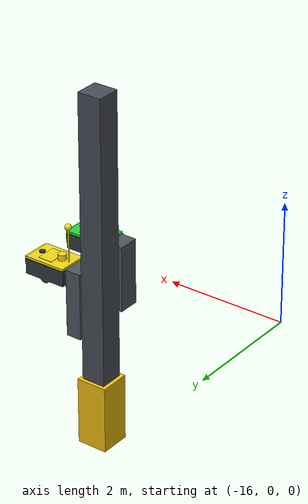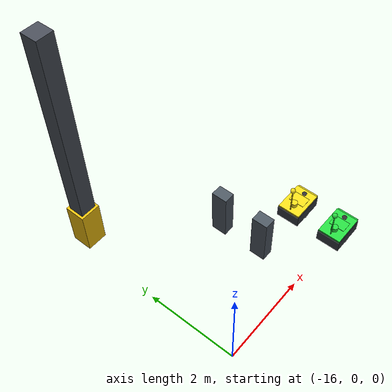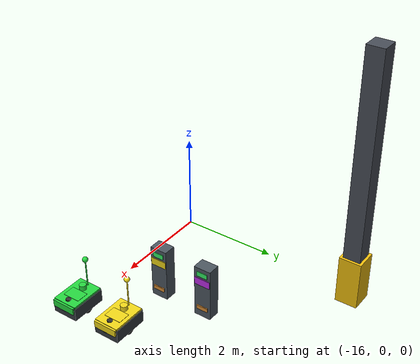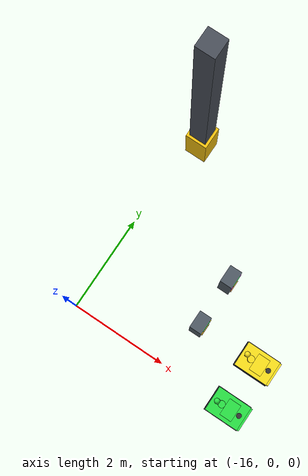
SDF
<sdf version="1.8">
 <world name="warehouse_3d">
  <model name="warehouse_architecture">
   <static>true</static>
   <link name="col_2_base">
    <pose>-15.7500 4.0000 0.5000 0.0000 0.0000 0.0000</pose>
    <collision name="col_2_base_col"><geometry><box><size>0.4500 0.4500 1.0000</size></box></geometry></collision>
    <visual name="col_2_base_vis">
     <geometry><box><size>0.4500 0.4500 1.0000</size></box></geometry>
     <material>
      <ambient>0.617 0.488 0.033 1.00</ambient>
      <diffuse>0.950 0.750 0.050 1.00</diffuse>
      <specular>0.15 0.15 0.15 1.0</specular>
     </material>
    </visual>
   </link>
   <link name="col_2_stem">
    <pose>-15.7500 4.0000 3.1000 0.0000 0.0000 0.0000</pose>
    <collision name="col_2_stem_col"><geometry><box><size>0.3500 0.3500 4.2000</size></box></geometry></collision>
    <visual name="col_2_stem_vis">
     <geometry><box><size>0.3500 0.3500 4.2000</size></box></geometry>
     <material>
      <ambient>0.182 0.195 0.221 1.00</ambient>
      <diffuse>0.280 0.300 0.340 1.00</diffuse>
      <specular>0.15 0.15 0.15 1.0</specular>
     </material>
    </visual>
   </link>
  </model>
  <model name="charging_bay_delta">
   <static>true</static>
   <pose>-13.80 1.00 0.0 0 0 0</pose>
   <link name="terminal_housing">
    <pose>0 0 0.55 0 0 0</pose>
    <collision name="pylon_col"><geometry><box><size>0.25 0.35 1.1</size></box></geometry></collision>
    <visual name="pylon_vis">
     <geometry><box><size>0.25 0.35 1.1</size></box></geometry>
     <material><ambient>0.22 0.25 0.28 1.0</ambient><diffuse>0.30 0.34 0.38 1.0</diffuse></material>
    </visual>
    <visual name="color_accent">
     <pose>0.13 0 0.25 0 0 0</pose>
     <geometry><box><size>0.01 0.33 0.15</size></box></geometry>
     <material><ambient>0.66 0.59 0.07 1.0</ambient><diffuse>0.95 0.85 0.10 1.0</diffuse></material>
    </visual>
    <visual name="status_led">
     <pose>0.13 0 0.42 0 0 0</pose>
     <geometry><box><size>0.01 0.22 0.10</size></box></geometry>
     <material>
      <ambient>0.1 0.8 0.3 1.0</ambient>
      <diffuse>0.2 0.95 0.4 1.0</diffuse>
      <emissive>0.2 0.9 0.3 1.0</emissive>
     </material>
    </visual>
    <visual name="charge_contact">
     <pose>0.135 0 -0.35 0 0 0</pose>
     <geometry><box><size>0.02 0.24 0.08</size></box></geometry>
     <material><ambient>0.75 0.45 0.15 1.0</ambient><diffuse>0.85 0.55 0.20 1.0</diffuse></material>
    </visual>
   </link>
  </model>
  <model name="charging_bay_epsilon">
   <static>true</static>
   <pose>-13.80 2.00 0.0 0 0 0</pose>
   <link name="terminal_housing">
    <pose>0 0 0.55 0 0 0</pose>
    <collision name="pylon_col"><geometry><box><size>0.25 0.35 1.1</size></box></geometry></collision>
    <visual name="pylon_vis">
     <geometry><box><size>0.25 0.35 1.1</size></box></geometry>
     <material><ambient>0.22 0.25 0.28 1.0</ambient><diffuse>0.30 0.34 0.38 1.0</diffuse></material>
    </visual>
    <visual name="color_accent">
     <pose>0.13 0 0.25 0 0 0</pose>
     <geometry><box><size>0.01 0.33 0.15</size></box></geometry>
     <material><ambient>0.52 0.13 0.64 1.0</ambient><diffuse>0.75 0.18 0.92 1.0</diffuse></material>
    </visual>
    <visual name="status_led">
     <pose>0.13 0 0.42 0 0 0</pose>
     <geometry><box><size>0.01 0.22 0.10</size></box></geometry>
     <material>
      <ambient>0.1 0.8 0.3 1.0</ambient>
      <diffuse>0.2 0.95 0.4 1.0</diffuse>
      <emissive>0.2 0.9 0.3 1.0</emissive>
     </material>
    </visual>
    <visual name="charge_contact">
     <pose>0.135 0 -0.35 0 0 0</pose>
     <geometry><box><size>0.02 0.24 0.08</size></box></geometry>
     <material><ambient>0.75 0.45 0.15 1.0</ambient><diffuse>0.85 0.55 0.20 1.0</diffuse></material>
    </visual>
   </link>
  </model>
  <model name="amr_robot_gamma">
   <pose>-12.5 0.0 0.05 0 0 0.0</pose>
   <link name="robot_gamma/base_footprint">
    <inertial>
     <pose>0.003956442831215972 0 0.17635208711433761 0 0 0</pose>
     <mass>27.550000000000001</mass>
     <inertia>
      <ixx>0.50626838475499114</ixx>
      <ixy>0</ixy>
      <ixz>-0.012657622504537201</ixz>
      <iyy>0.86224713248638873</iyy>
      <iyz>0</iyz>
      <izz>1.012238747731397</izz>
     </inertia>
    </inertial>
    <collision name="robot_gamma/base_footprint_fixed_joint_lump__robot_gamma/base_link_collision">
     <pose>0 0 0.17999999999999999 0 0 0</pose>
     <geometry><box><size>0.71999999999999997 0.52000000000000002 0.26000000000000001</size></box></geometry>
    </collision>
    <collision name="robot_gamma/base_footprint_fixed_joint_lump__robot_gamma/front_caster_link_collision_1">
     <pose>0.28000000000000003 0 0.040000000000000001 0 0 0</pose>
     <geometry><sphere><radius>0.040000000000000001</radius></sphere></geometry>
    </collision>
    <collision name="robot_gamma/base_footprint_fixed_joint_lump__robot_gamma/lidar_link_collision_2">
     <pose>0.23999999999999999 0 0.34000000000000002 0 0 0</pose>
     <geometry>
      <cylinder><length>0.059999999999999998</length><radius>0.050000000000000003</radius></cylinder>
     </geometry>
    </collision>
    <collision name="robot_gamma/base_footprint_fixed_joint_lump__robot_gamma/rear_caster_link_collision_3">
     <pose>-0.28000000000000003 0 0.040000000000000001 0 0 0</pose>
     <geometry><sphere><radius>0.040000000000000001</radius></sphere></geometry>
    </collision>
    <visual name="robot_gamma/base_footprint_fixed_joint_lump__robot_gamma/base_link_visual">
     <pose>0 0 0.17999999999999999 0 0 0</pose>
     <geometry><box><size>0.71999999999999997 0.52000000000000002 0.26000000000000001</size></box></geometry>
     <material>
      <diffuse>0.200000003 0.219999999 0.25 1</diffuse>
      <ambient>0.150000006 0.180000007 0.200000003 1</ambient>
     </material>
    </visual>
    <visual name="robot_gamma/base_footprint_fixed_joint_lump__robot_gamma/camera_link_visual_1">
     <pose>0.37 0 0.20000000000000001 0 0 0</pose>
     <geometry><box><size>0.029999999999999999 0.080000000000000002 0.029999999999999999</size></box></geometry>
     <material>
      <diffuse>0.187500015 0.187500015 0.187500015 1</diffuse>
      <ambient>0.187500015 0.187500015 0.187500015 1</ambient>
     </material>
    </visual>
    <visual name="robot_gamma/base_footprint_fixed_joint_lump__robot_gamma/front_caster_link_visual_2">
     <pose>0.28000000000000003 0 0.040000000000000001 0 0 0</pose>
     <geometry><sphere><radius>0.040000000000000001</radius></sphere></geometry>
     <material><diffuse>0.125 0.125 0.125 1</diffuse><ambient>0.125 0.125 0.125 1</ambient></material>
    </visual>
    <visual name="robot_gamma/base_footprint_fixed_joint_lump__robot_gamma/lidar_link_visual_3">
     <pose>0.23999999999999999 0 0.34000000000000002 0 0 0</pose>
     <geometry>
      <cylinder><length>0.059999999999999998</length><radius>0.050000000000000003</radius></cylinder>
     </geometry>
     <material>
      <diffuse>0.187500015 0.187500015 0.187500015 1</diffuse>
      <ambient>0.187500015 0.187500015 0.187500015 1</ambient>
     </material>
    </visual>
    <visual name="robot_gamma/base_footprint_fixed_joint_lump__robot_gamma/rear_caster_link_visual_4">
     <pose>-0.28000000000000003 0 0.040000000000000001 0 0 0</pose>
     <geometry><sphere><radius>0.040000000000000001</radius></sphere></geometry>
     <material><diffuse>0.125 0.125 0.125 1</diffuse><ambient>0.125 0.125 0.125 1</ambient></material>
    </visual>
    <visual name="robot_gamma/base_footprint_fixed_joint_lump__robot_gamma/shell_link_visual_5">
     <pose>0 0 0.33000000000000002 0 0 0</pose>
     <geometry><box><size>0.69999999999999996 0.5 0.040000000000000001</size></box></geometry>
     <material>
      <diffuse>0.150000006 0.850000024 0.25 1</diffuse>
      <ambient>0.100000001 0.75 0.200000003 1</ambient>
      <specular>0.600000024 0.600000024 0.600000024 1</specular>
      <emissive>0.0799999982 0.400000006 0.119999997 1</emissive>
     </material>
    </visual>
    <visual name="robot_gamma/base_footprint_fixed_joint_lump__robot_gamma/shell_link_visual_6">
     <pose>0.35999999999999999 0 0.27000000000000002 0 0 0</pose>
     <geometry><box><size>0.059999999999999998 0.47999999999999998 0.14000000000000001</size></box></geometry>
     <material>
      <diffuse>0.150000006 0.850000024 0.25 1</diffuse>
      <ambient>0.100000001 0.75 0.200000003 1</ambient>
      <specular>0.600000024 0.600000024 0.600000024 1</specular>
      <emissive>0.0799999982 0.400000006 0.119999997 1</emissive>
     </material>
    </visual>
    <visual name="robot_gamma/base_footprint_fixed_joint_lump__robot_gamma/shell_link_visual_7">
     <pose>-0.14999999999999999 0 0.40000000000000002 0 0 0</pose>
     <geometry>
      <cylinder><length>0.10000000000000001</length><radius>0.070000000000000007</radius></cylinder>
     </geometry>
     <material>
      <diffuse>0.150000006 0.850000024 0.25 1</diffuse>
      <ambient>0.100000001 0.75 0.200000003 1</ambient>
      <specular>0.600000024 0.600000024 0.600000024 1</specular>
      <emissive>0.0799999982 0.400000006 0.119999997 1</emissive>
     </material>
    </visual>
    <visual name="robot_gamma/base_footprint_fixed_joint_lump__robot_gamma/shell_link_visual_8">
     <pose>-0.28000000000000003 0 0.65000000000000002 0 0 0</pose>
     <geometry><cylinder><length>0.59999999999999998</length><radius>0.012</radius></cylinder></geometry>
     <material>
      <diffuse>0.150000006 0.850000024 0.25 1</diffuse>
      <ambient>0.100000001 0.75 0.200000003 1</ambient>
      <specular>0.600000024 0.600000024 0.600000024 1</specular>
      <emissive>0.0799999982 0.400000006 0.119999997 1</emissive>
     </material>
    </visual>
    <visual name="robot_gamma/base_footprint_fixed_joint_lump__robot_gamma/shell_link_visual_9">
     <pose>-0.28000000000000003 0 0.94999999999999996 0 0 0</pose>
     <geometry><sphere><radius>0.055</radius></sphere></geometry>
     <material>
      <diffuse>0.150000006 0.850000024 0.25 1</diffuse>
      <ambient>0.100000001 0.75 0.200000003 1</ambient>
      <specular>0.600000024 0.600000024 0.600000024 1</specular>
      <emissive>0.0799999982 0.400000006 0.119999997 1</emissive>
     </material>
    </visual>
    <visual name="robot_gamma/base_footprint_fixed_joint_lump__robot_gamma/shell_link_visual_10">
     <pose>0.050000000000000003 0 0.35199999999999998 0 0 0</pose>
     <geometry><box><size>0.25 0.34999999999999998 0.01</size></box></geometry>
     <material>
      <diffuse>0.150000006 0.850000024 0.25 1</diffuse>
      <ambient>0.100000001 0.75 0.200000003 1</ambient>
      <specular>0.600000024 0.600000024 0.600000024 1</specular>
      <emissive>0.0799999982 0.400000006 0.119999997 1</emissive>
     </material>
    </visual>
    <sensor name="camera" type="camera">
     <pose relative_to="robot_gamma/camera_link">0 0 0 0 0 0</pose>
     <topic>robot_gamma/camera/image_raw</topic>
     <update_rate>15</update_rate>
     <camera>
      <horizontal_fov>1.3962634</horizontal_fov>
      <image><width>640</width><height>480</height><format>R8G8B8</format></image>
      <clip><near>0.10000000000000001</near><far>20</far></clip>
     </camera>
     <always_on>true</always_on>
     <visualize>true</visualize>
    </sensor>
    <sensor name="imu" type="imu">
     <pose relative_to="robot_gamma/imu_link">0 0 0 0 0 0</pose>
     <topic>robot_gamma/imu</topic>
     <update_rate>50</update_rate>
     <always_on>true</always_on>
     <visualize>false</visualize>
    </sensor>
    <sensor name="lidar" type="gpu_lidar">
     <pose relative_to="robot_gamma/lidar_link">0 0 0 0 0 0</pose>
     <topic>robot_gamma/scan</topic>
     <update_rate>15</update_rate>
     <ray>
      <scan>
       <horizontal>
        <samples>360</samples>
        <resolution>1</resolution>
        <min_angle>-3.1415899999999999</min_angle>
        <max_angle>3.1415899999999999</max_angle>
       </horizontal>
      </scan>
      <range><min>0.14999999999999999</min><max>16</max><resolution>0.01</resolution></range>
     </ray>
     <always_on>true</always_on>
     <visualize>true</visualize>
    </sensor>
   </link>
   <joint name="robot_gamma/left_wheel_joint" type="revolute">
    <pose relative_to="robot_gamma/base_footprint">0 0.23000000000000001 0.10000000000000001 0 0 0</pose>
    <parent>robot_gamma/base_footprint</parent>
    <child>robot_gamma/left_wheel_link</child>
    <axis>
     <xyz>0 1 0</xyz>
     <limit><lower>-inf</lower><upper>inf</upper></limit>
     <dynamics><spring_reference>0</spring_reference><spring_stiffness>0</spring_stiffness></dynamics>
    </axis>
   </joint>
   <link name="robot_gamma/left_wheel_link">
    <pose relative_to="robot_gamma/left_wheel_joint">0 0 0 0 0 0</pose>
    <inertial>
     <mass>2.5</mass>
     <inertia>
      <ixx>0.0070000000000000001</ixx>
      <ixy>0</ixy>
      <ixz>0</ixz>
      <iyy>0.0070000000000000001</iyy>
      <iyz>0</iyz>
      <izz>0.012500000000000001</izz>
     </inertia>
    </inertial>
    <collision name="robot_gamma/left_wheel_link_collision">
     <pose>0 0 0 1.5707963267948959 0 0</pose>
     <geometry>
      <cylinder><length>0.050000000000000003</length><radius>0.10000000000000001</radius></cylinder>
     </geometry>
    </collision>
    <visual name="robot_gamma/left_wheel_link_visual">
     <pose>0 0 0 1.5707963267948959 0 0</pose>
     <geometry>
      <cylinder><length>0.050000000000000003</length><radius>0.10000000000000001</radius></cylinder>
     </geometry>
     <material><diffuse>0.125 0.125 0.125 1</diffuse><ambient>0.125 0.125 0.125 1</ambient></material>
    </visual>
   </link>
   <joint name="robot_gamma/right_wheel_joint" type="revolute">
    <pose relative_to="robot_gamma/base_footprint">0 -0.23000000000000001 0.10000000000000001 0 0 0</pose>
    <parent>robot_gamma/base_footprint</parent>
    <child>robot_gamma/right_wheel_link</child>
    <axis>
     <xyz>0 1 0</xyz>
     <limit><lower>-inf</lower><upper>inf</upper></limit>
     <dynamics><spring_reference>0</spring_reference><spring_stiffness>0</spring_stiffness></dynamics>
    </axis>
   </joint>
   <link name="robot_gamma/right_wheel_link">
    <pose relative_to="robot_gamma/right_wheel_joint">0 0 0 0 0 0</pose>
    <inertial>
     <mass>2.5</mass>
     <inertia>
      <ixx>0.0070000000000000001</ixx>
      <ixy>0</ixy>
      <ixz>0</ixz>
      <iyy>0.0070000000000000001</iyy>
      <iyz>0</iyz>
      <izz>0.012500000000000001</izz>
     </inertia>
    </inertial>
    <collision name="robot_gamma/right_wheel_link_collision">
     <pose>0 0 0 1.5707963267948959 0 0</pose>
     <geometry>
      <cylinder><length>0.050000000000000003</length><radius>0.10000000000000001</radius></cylinder>
     </geometry>
    </collision>
    <visual name="robot_gamma/right_wheel_link_visual">
     <pose>0 0 0 1.5707963267948959 0 0</pose>
     <geometry>
      <cylinder><length>0.050000000000000003</length><radius>0.10000000000000001</radius></cylinder>
     </geometry>
     <material><diffuse>0.125 0.125 0.125 1</diffuse><ambient>0.125 0.125 0.125 1</ambient></material>
    </visual>
   </link>
   <plugin name="gz::sim::systems::DiffDrive" filename="gz-sim-diff-drive-system">
    <left_joint>robot_gamma/left_wheel_joint</left_joint>
    <right_joint>robot_gamma/right_wheel_joint</right_joint>
    <wheel_separation>0.46</wheel_separation>
    <wheel_radius>0.1</wheel_radius>
    <max_linear_acceleration>1.5</max_linear_acceleration>
    <min_linear_acceleration>-1.5</min_linear_acceleration>
    <max_angular_acceleration>2.0</max_angular_acceleration>
    <min_angular_acceleration>-2.0</min_angular_acceleration>
    <max_linear_velocity>3.0</max_linear_velocity>
    <min_linear_velocity>-3.0</min_linear_velocity>
    <max_angular_velocity>2.5</max_angular_velocity>
    <min_angular_velocity>-2.5</min_angular_velocity>
    <topic>robot_gamma/cmd_vel</topic>
    <odom_topic>robot_gamma/odom</odom_topic>
    <tf_topic>robot_gamma/tf</tf_topic>
    <frame_id>robot_gamma/odom</frame_id>
    <child_frame_id>robot_gamma/base_footprint</child_frame_id>
    <odom_publisher_frequency>30</odom_publisher_frequency>
   </plugin>
   <plugin name="gz::sim::systems::JointStatePublisher" filename="gz-sim-joint-state-publisher-system">
    <topic>robot_gamma/joint_states</topic>
    <joint_name>robot_gamma/left_wheel_joint</joint_name>
    <joint_name>robot_gamma/right_wheel_joint</joint_name>
   </plugin>
   <frame name="robot_gamma/camera_joint" attached_to="robot_gamma/base_link">
    <pose>0.37 0 0.10000000000000001 0 0 0</pose>
   </frame>
   <frame name="robot_gamma/camera_link" attached_to="robot_gamma/camera_joint"/>
   <frame name="robot_gamma/front_caster_joint" attached_to="robot_gamma/base_link">
    <pose>0.28000000000000003 0 -0.059999999999999998 0 0 0</pose>
   </frame>
   <frame name="robot_gamma/front_caster_link" attached_to="robot_gamma/front_caster_joint"/>
   <frame name="robot_gamma/imu_joint" attached_to="robot_gamma/base_link">
    <pose>0 0 0.050000000000000003 0 0 0</pose>
   </frame>
   <frame name="robot_gamma/imu_link" attached_to="robot_gamma/imu_joint"/>
   <frame name="robot_gamma/lidar_joint" attached_to="robot_gamma/base_link">
    <pose>0.23999999999999999 0 0.23999999999999999 0 0 0</pose>
   </frame>
   <frame name="robot_gamma/lidar_link" attached_to="robot_gamma/lidar_joint"/>
   <frame name="robot_gamma/rear_caster_joint" attached_to="robot_gamma/base_link">
    <pose>-0.28000000000000003 0 -0.059999999999999998 0 0 0</pose>
   </frame>
   <frame name="robot_gamma/rear_caster_link" attached_to="robot_gamma/rear_caster_joint"/>
   <frame name="robot_gamma/shell_joint" attached_to="robot_gamma/base_link">
    <pose>0 0 0.23000000000000001 0 0 0</pose>
   </frame>
   <frame name="robot_gamma/shell_link" attached_to="robot_gamma/shell_joint"/>
   <frame name="robot_gamma/base_joint" attached_to="robot_gamma/base_footprint">
    <pose>0 0 0.10000000000000001 0 0 0</pose>
   </frame>
   <frame name="robot_gamma/base_link" attached_to="robot_gamma/base_joint"/>
  </model>
  <model name="amr_robot_delta">
   <pose>-12.5 1.0 0.05 0 0 0.0</pose>
   <link name="robot_delta/base_footprint">
    <inertial>
     <pose>0.003956442831215972 0 0.17635208711433761 0 0 0</pose>
     <mass>27.550000000000001</mass>
     <inertia>
      <ixx>0.50626838475499114</ixx>
      <ixy>0</ixy>
      <ixz>-0.012657622504537201</ixz>
      <iyy>0.86224713248638873</iyy>
      <iyz>0</iyz>
      <izz>1.012238747731397</izz>
     </inertia>
    </inertial>
    <collision name="robot_delta/base_footprint_fixed_joint_lump__robot_delta/base_link_collision">
     <pose>0 0 0.17999999999999999 0 0 0</pose>
     <geometry><box><size>0.71999999999999997 0.52000000000000002 0.26000000000000001</size></box></geometry>
    </collision>
    <collision name="robot_delta/base_footprint_fixed_joint_lump__robot_delta/front_caster_link_collision_1">
     <pose>0.28000000000000003 0 0.040000000000000001 0 0 0</pose>
     <geometry><sphere><radius>0.040000000000000001</radius></sphere></geometry>
    </collision>
    <collision name="robot_delta/base_footprint_fixed_joint_lump__robot_delta/lidar_link_collision_2">
     <pose>0.23999999999999999 0 0.34000000000000002 0 0 0</pose>
     <geometry>
      <cylinder><length>0.059999999999999998</length><radius>0.050000000000000003</radius></cylinder>
     </geometry>
    </collision>
    <collision name="robot_delta/base_footprint_fixed_joint_lump__robot_delta/rear_caster_link_collision_3">
     <pose>-0.28000000000000003 0 0.040000000000000001 0 0 0</pose>
     <geometry><sphere><radius>0.040000000000000001</radius></sphere></geometry>
    </collision>
    <visual name="robot_delta/base_footprint_fixed_joint_lump__robot_delta/base_link_visual">
     <pose>0 0 0.17999999999999999 0 0 0</pose>
     <geometry><box><size>0.71999999999999997 0.52000000000000002 0.26000000000000001</size></box></geometry>
     <material>
      <diffuse>0.200000003 0.219999999 0.25 1</diffuse>
      <ambient>0.150000006 0.180000007 0.200000003 1</ambient>
     </material>
    </visual>
    <visual name="robot_delta/base_footprint_fixed_joint_lump__robot_delta/camera_link_visual_1">
     <pose>0.37 0 0.20000000000000001 0 0 0</pose>
     <geometry><box><size>0.029999999999999999 0.080000000000000002 0.029999999999999999</size></box></geometry>
     <material>
      <diffuse>0.187500015 0.187500015 0.187500015 1</diffuse>
      <ambient>0.187500015 0.187500015 0.187500015 1</ambient>
     </material>
    </visual>
    <visual name="robot_delta/base_footprint_fixed_joint_lump__robot_delta/front_caster_link_visual_2">
     <pose>0.28000000000000003 0 0.040000000000000001 0 0 0</pose>
     <geometry><sphere><radius>0.040000000000000001</radius></sphere></geometry>
     <material><diffuse>0.125 0.125 0.125 1</diffuse><ambient>0.125 0.125 0.125 1</ambient></material>
    </visual>
    <visual name="robot_delta/base_footprint_fixed_joint_lump__robot_delta/lidar_link_visual_3">
     <pose>0.23999999999999999 0 0.34000000000000002 0 0 0</pose>
     <geometry>
      <cylinder><length>0.059999999999999998</length><radius>0.050000000000000003</radius></cylinder>
     </geometry>
     <material>
      <diffuse>0.187500015 0.187500015 0.187500015 1</diffuse>
      <ambient>0.187500015 0.187500015 0.187500015 1</ambient>
     </material>
    </visual>
    <visual name="robot_delta/base_footprint_fixed_joint_lump__robot_delta/rear_caster_link_visual_4">
     <pose>-0.28000000000000003 0 0.040000000000000001 0 0 0</pose>
     <geometry><sphere><radius>0.040000000000000001</radius></sphere></geometry>
     <material><diffuse>0.125 0.125 0.125 1</diffuse><ambient>0.125 0.125 0.125 1</ambient></material>
    </visual>
    <visual name="robot_delta/base_footprint_fixed_joint_lump__robot_delta/shell_link_visual_5">
     <pose>0 0 0.33000000000000002 0 0 0</pose>
     <geometry><box><size>0.69999999999999996 0.5 0.040000000000000001</size></box></geometry>
     <material>
      <diffuse>0.949999988 0.850000024 0.100000001 1</diffuse>
      <ambient>0.850000024 0.75 0.0799999982 1</ambient>
      <specular>0.600000024 0.600000024 0.600000024 1</specular>
      <emissive>0.400000006 0.349999994 0.0399999991 1</emissive>
     </material>
    </visual>
    <visual name="robot_delta/base_footprint_fixed_joint_lump__robot_delta/shell_link_visual_6">
     <pose>0.35999999999999999 0 0.27000000000000002 0 0 0</pose>
     <geometry><box><size>0.059999999999999998 0.47999999999999998 0.14000000000000001</size></box></geometry>
     <material>
      <diffuse>0.949999988 0.850000024 0.100000001 1</diffuse>
      <ambient>0.850000024 0.75 0.0799999982 1</ambient>
      <specular>0.600000024 0.600000024 0.600000024 1</specular>
      <emissive>0.400000006 0.349999994 0.0399999991 1</emissive>
     </material>
    </visual>
    <visual name="robot_delta/base_footprint_fixed_joint_lump__robot_delta/shell_link_visual_7">
     <pose>-0.14999999999999999 0 0.40000000000000002 0 0 0</pose>
     <geometry>
      <cylinder><length>0.10000000000000001</length><radius>0.070000000000000007</radius></cylinder>
     </geometry>
     <material>
      <diffuse>0.949999988 0.850000024 0.100000001 1</diffuse>
      <ambient>0.850000024 0.75 0.0799999982 1</ambient>
      <specular>0.600000024 0.600000024 0.600000024 1</specular>
      <emissive>0.400000006 0.349999994 0.0399999991 1</emissive>
     </material>
    </visual>
    <visual name="robot_delta/base_footprint_fixed_joint_lump__robot_delta/shell_link_visual_8">
     <pose>-0.28000000000000003 0 0.65000000000000002 0 0 0</pose>
     <geometry><cylinder><length>0.59999999999999998</length><radius>0.012</radius></cylinder></geometry>
     <material>
      <diffuse>0.949999988 0.850000024 0.100000001 1</diffuse>
      <ambient>0.850000024 0.75 0.0799999982 1</ambient>
      <specular>0.600000024 0.600000024 0.600000024 1</specular>
      <emissive>0.400000006 0.349999994 0.0399999991 1</emissive>
     </material>
    </visual>
    <visual name="robot_delta/base_footprint_fixed_joint_lump__robot_delta/shell_link_visual_9">
     <pose>-0.28000000000000003 0 0.94999999999999996 0 0 0</pose>
     <geometry><sphere><radius>0.055</radius></sphere></geometry>
     <material>
      <diffuse>0.949999988 0.850000024 0.100000001 1</diffuse>
      <ambient>0.850000024 0.75 0.0799999982 1</ambient>
      <specular>0.600000024 0.600000024 0.600000024 1</specular>
      <emissive>0.400000006 0.349999994 0.0399999991 1</emissive>
     </material>
    </visual>
    <visual name="robot_delta/base_footprint_fixed_joint_lump__robot_delta/shell_link_visual_10">
     <pose>0.050000000000000003 0 0.35199999999999998 0 0 0</pose>
     <geometry><box><size>0.25 0.34999999999999998 0.01</size></box></geometry>
     <material>
      <diffuse>0.949999988 0.850000024 0.100000001 1</diffuse>
      <ambient>0.850000024 0.75 0.0799999982 1</ambient>
      <specular>0.600000024 0.600000024 0.600000024 1</specular>
      <emissive>0.400000006 0.349999994 0.0399999991 1</emissive>
     </material>
    </visual>
    <sensor name="camera" type="camera">
     <pose relative_to="robot_delta/camera_link">0 0 0 0 0 0</pose>
     <topic>robot_delta/camera/image_raw</topic>
     <update_rate>15</update_rate>
     <camera>
      <horizontal_fov>1.3962634</horizontal_fov>
      <image><width>640</width><height>480</height><format>R8G8B8</format></image>
      <clip><near>0.10000000000000001</near><far>20</far></clip>
     </camera>
     <always_on>true</always_on>
     <visualize>true</visualize>
    </sensor>
    <sensor name="imu" type="imu">
     <pose relative_to="robot_delta/imu_link">0 0 0 0 0 0</pose>
     <topic>robot_delta/imu</topic>
     <update_rate>50</update_rate>
     <always_on>true</always_on>
     <visualize>false</visualize>
    </sensor>
    <sensor name="lidar" type="gpu_lidar">
     <pose relative_to="robot_delta/lidar_link">0 0 0 0 0 0</pose>
     <topic>robot_delta/scan</topic>
     <update_rate>15</update_rate>
     <ray>
      <scan>
       <horizontal>
        <samples>360</samples>
        <resolution>1</resolution>
        <min_angle>-3.1415899999999999</min_angle>
        <max_angle>3.1415899999999999</max_angle>
       </horizontal>
      </scan>
      <range><min>0.14999999999999999</min><max>16</max><resolution>0.01</resolution></range>
     </ray>
     <always_on>true</always_on>
     <visualize>true</visualize>
    </sensor>
   </link>
   <joint name="robot_delta/left_wheel_joint" type="revolute">
    <pose relative_to="robot_delta/base_footprint">0 0.23000000000000001 0.10000000000000001 0 0 0</pose>
    <parent>robot_delta/base_footprint</parent>
    <child>robot_delta/left_wheel_link</child>
    <axis>
     <xyz>0 1 0</xyz>
     <limit><lower>-inf</lower><upper>inf</upper></limit>
     <dynamics><spring_reference>0</spring_reference><spring_stiffness>0</spring_stiffness></dynamics>
    </axis>
   </joint>
   <link name="robot_delta/left_wheel_link">
    <pose relative_to="robot_delta/left_wheel_joint">0 0 0 0 0 0</pose>
    <inertial>
     <mass>2.5</mass>
     <inertia>
      <ixx>0.0070000000000000001</ixx>
      <ixy>0</ixy>
      <ixz>0</ixz>
      <iyy>0.0070000000000000001</iyy>
      <iyz>0</iyz>
      <izz>0.012500000000000001</izz>
     </inertia>
    </inertial>
    <collision name="robot_delta/left_wheel_link_collision">
     <pose>0 0 0 1.5707963267948959 0 0</pose>
     <geometry>
      <cylinder><length>0.050000000000000003</length><radius>0.10000000000000001</radius></cylinder>
     </geometry>
    </collision>
    <visual name="robot_delta/left_wheel_link_visual">
     <pose>0 0 0 1.5707963267948959 0 0</pose>
     <geometry>
      <cylinder><length>0.050000000000000003</length><radius>0.10000000000000001</radius></cylinder>
     </geometry>
     <material><diffuse>0.125 0.125 0.125 1</diffuse><ambient>0.125 0.125 0.125 1</ambient></material>
    </visual>
   </link>
   <joint name="robot_delta/right_wheel_joint" type="revolute">
    <pose relative_to="robot_delta/base_footprint">0 -0.23000000000000001 0.10000000000000001 0 0 0</pose>
    <parent>robot_delta/base_footprint</parent>
    <child>robot_delta/right_wheel_link</child>
    <axis>
     <xyz>0 1 0</xyz>
     <limit><lower>-inf</lower><upper>inf</upper></limit>
     <dynamics><spring_reference>0</spring_reference><spring_stiffness>0</spring_stiffness></dynamics>
    </axis>
   </joint>
   <link name="robot_delta/right_wheel_link">
    <pose relative_to="robot_delta/right_wheel_joint">0 0 0 0 0 0</pose>
    <inertial>
     <mass>2.5</mass>
     <inertia>
      <ixx>0.0070000000000000001</ixx>
      <ixy>0</ixy>
      <ixz>0</ixz>
      <iyy>0.0070000000000000001</iyy>
      <iyz>0</iyz>
      <izz>0.012500000000000001</izz>
     </inertia>
    </inertial>
    <collision name="robot_delta/right_wheel_link_collision">
     <pose>0 0 0 1.5707963267948959 0 0</pose>
     <geometry>
      <cylinder><length>0.050000000000000003</length><radius>0.10000000000000001</radius></cylinder>
     </geometry>
    </collision>
    <visual name="robot_delta/right_wheel_link_visual">
     <pose>0 0 0 1.5707963267948959 0 0</pose>
     <geometry>
      <cylinder><length>0.050000000000000003</length><radius>0.10000000000000001</radius></cylinder>
     </geometry>
     <material><diffuse>0.125 0.125 0.125 1</diffuse><ambient>0.125 0.125 0.125 1</ambient></material>
    </visual>
   </link>
   <plugin name="gz::sim::systems::DiffDrive" filename="gz-sim-diff-drive-system">
    <left_joint>robot_delta/left_wheel_joint</left_joint>
    <right_joint>robot_delta/right_wheel_joint</right_joint>
    <wheel_separation>0.46</wheel_separation>
    <wheel_radius>0.1</wheel_radius>
    <max_linear_acceleration>1.5</max_linear_acceleration>
    <min_linear_acceleration>-1.5</min_linear_acceleration>
    <max_angular_acceleration>2.0</max_angular_acceleration>
    <min_angular_acceleration>-2.0</min_angular_acceleration>
    <max_linear_velocity>3.0</max_linear_velocity>
    <min_linear_velocity>-3.0</min_linear_velocity>
    <max_angular_velocity>2.5</max_angular_velocity>
    <min_angular_velocity>-2.5</min_angular_velocity>
    <topic>robot_delta/cmd_vel</topic>
    <odom_topic>robot_delta/odom</odom_topic>
    <tf_topic>robot_delta/tf</tf_topic>
    <frame_id>robot_delta/odom</frame_id>
    <child_frame_id>robot_delta/base_footprint</child_frame_id>
    <odom_publisher_frequency>30</odom_publisher_frequency>
   </plugin>
   <plugin name="gz::sim::systems::JointStatePublisher" filename="gz-sim-joint-state-publisher-system">
    <topic>robot_delta/joint_states</topic>
    <joint_name>robot_delta/left_wheel_joint</joint_name>
    <joint_name>robot_delta/right_wheel_joint</joint_name>
   </plugin>
   <frame name="robot_delta/camera_joint" attached_to="robot_delta/base_link">
    <pose>0.37 0 0.10000000000000001 0 0 0</pose>
   </frame>
   <frame name="robot_delta/camera_link" attached_to="robot_delta/camera_joint"/>
   <frame name="robot_delta/front_caster_joint" attached_to="robot_delta/base_link">
    <pose>0.28000000000000003 0 -0.059999999999999998 0 0 0</pose>
   </frame>
   <frame name="robot_delta/front_caster_link" attached_to="robot_delta/front_caster_joint"/>
   <frame name="robot_delta/imu_joint" attached_to="robot_delta/base_link">
    <pose>0 0 0.050000000000000003 0 0 0</pose>
   </frame>
   <frame name="robot_delta/imu_link" attached_to="robot_delta/imu_joint"/>
   <frame name="robot_delta/lidar_joint" attached_to="robot_delta/base_link">
    <pose>0.23999999999999999 0 0.23999999999999999 0 0 0</pose>
   </frame>
   <frame name="robot_delta/lidar_link" attached_to="robot_delta/lidar_joint"/>
   <frame name="robot_delta/rear_caster_joint" attached_to="robot_delta/base_link">
    <pose>-0.28000000000000003 0 -0.059999999999999998 0 0 0</pose>
   </frame>
   <frame name="robot_delta/rear_caster_link" attached_to="robot_delta/rear_caster_joint"/>
   <frame name="robot_delta/shell_joint" attached_to="robot_delta/base_link">
    <pose>0 0 0.23000000000000001 0 0 0</pose>
   </frame>
   <frame name="robot_delta/shell_link" attached_to="robot_delta/shell_joint"/>
   <frame name="robot_delta/base_joint" attached_to="robot_delta/base_footprint">
    <pose>0 0 0.10000000000000001 0 0 0</pose>
   </frame>
   <frame name="robot_delta/base_link" attached_to="robot_delta/base_joint"/>
  </model>
 </world>
</sdf>
